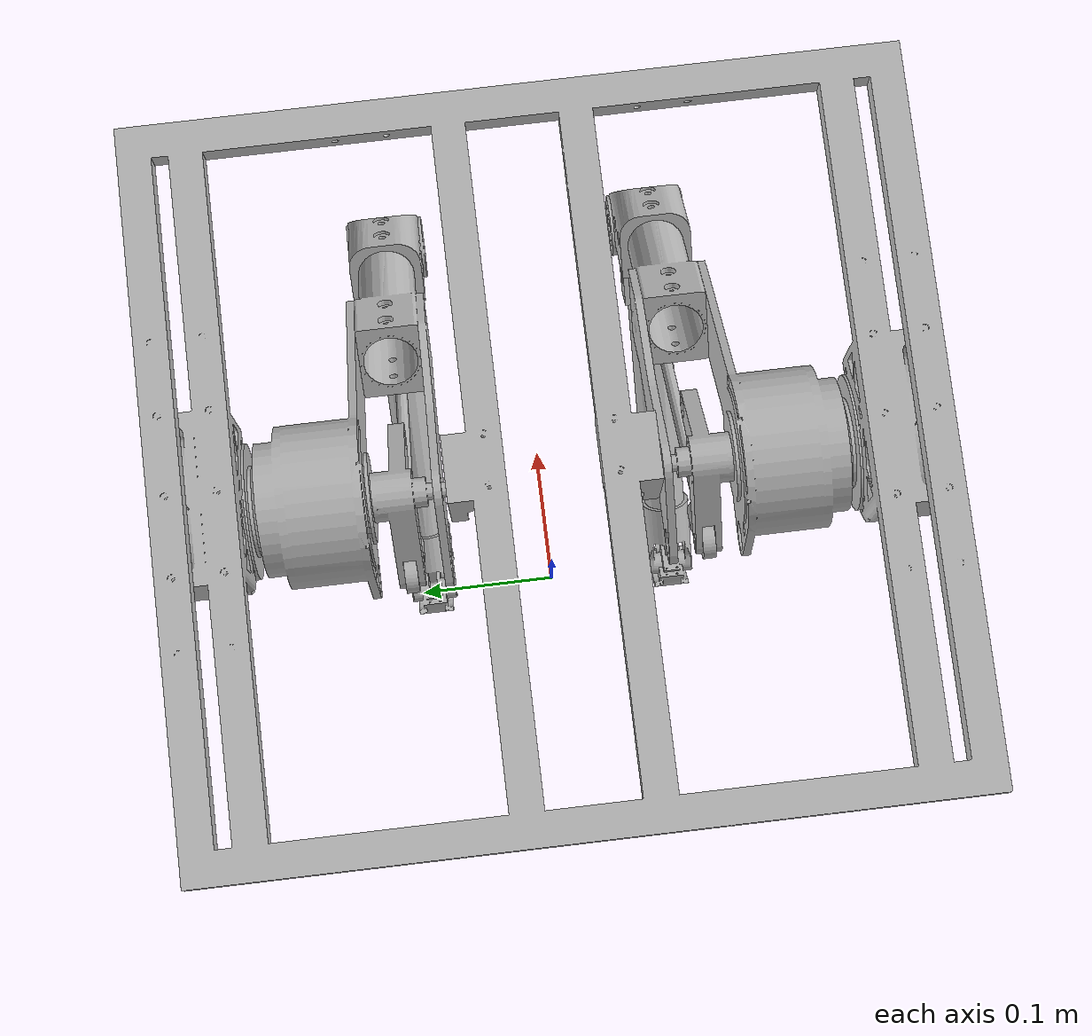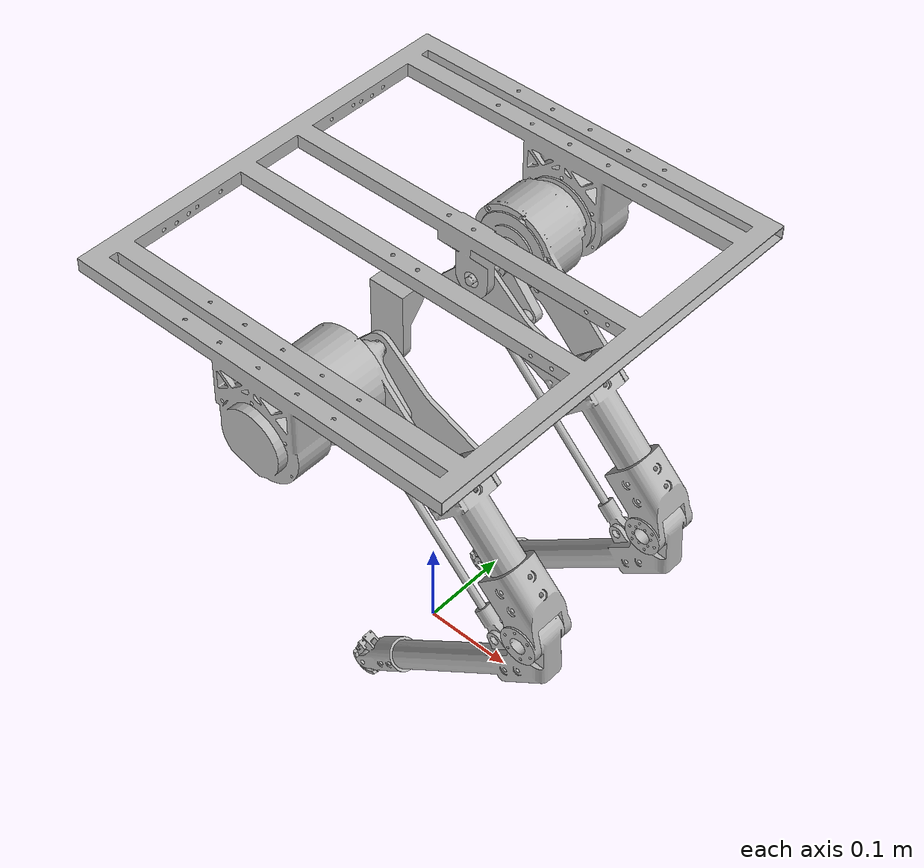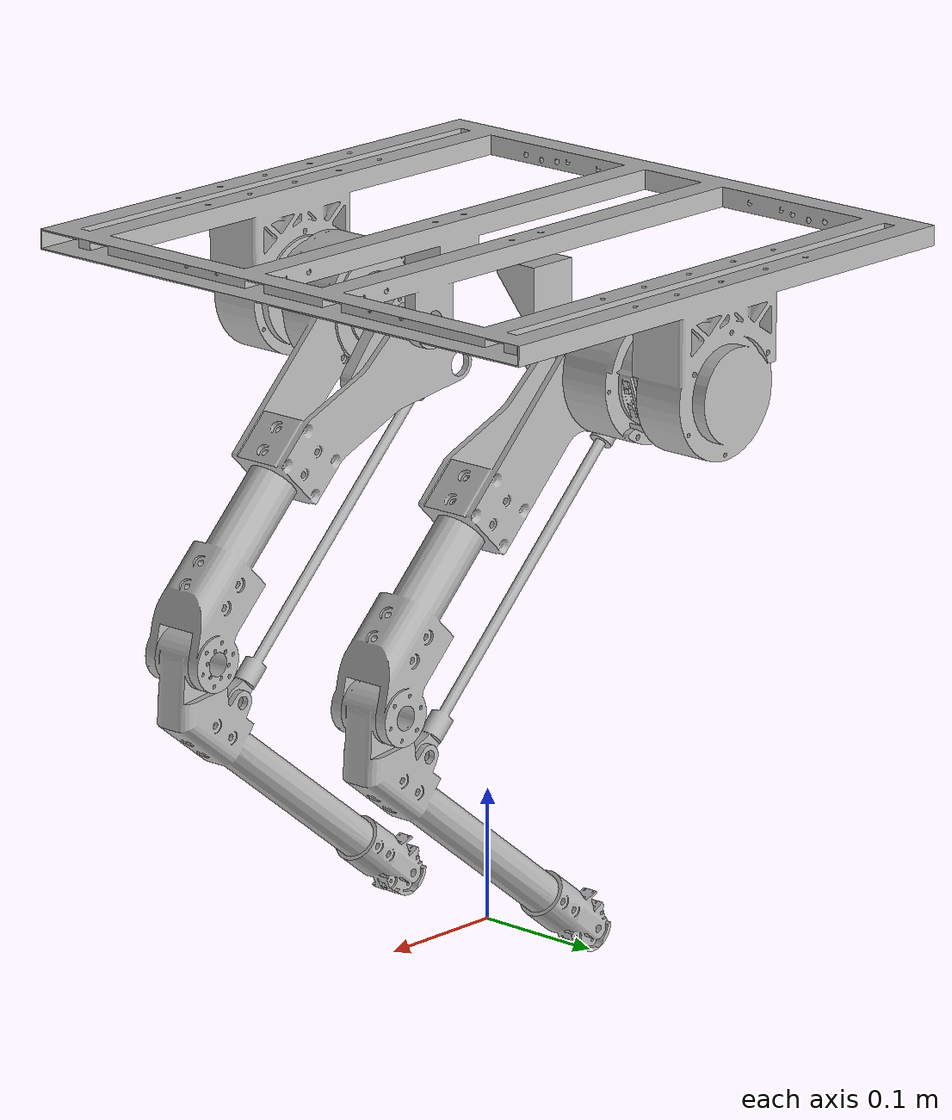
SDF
<?xml version='1.0'?>
<sdf version='1.7'>
  <model name='model_urdf'>
    <link name='base_link'>
      <inertial>
        <pose>-0.001894 0 0.476982 0 -0 0</pose>
        <mass>1.78173</mass>
        <inertia>
          <ixx>0.0157194</ixx>
          <ixy>4.03459e-10</ixy>
          <ixz>7.77942e-07</ixz>
          <iyy>0.0134756</iyy>
          <iyz>1.38093e-10</iyz>
          <izz>0.0280833</izz>
        </inertia>
      </inertial>
      <self_collide>0</self_collide>
      <enable_wind>0</enable_wind>
      <kinematic>0</kinematic>
      <pose>0 0 0 0 -0 0</pose>
      <visual name='base_link_visual'>
        <pose>0 0 0 0 -0 0</pose>
        <geometry>
          <mesh>
            <scale>1 1 1</scale>
            <uri>/home/zhe/catkin_ws/src/Hyleg/hyleg_ros/robots/model_urdf/meshes/base_link.STL</uri>
          </mesh>
        </geometry>
        <material>
          <shader type='pixel'/>
          <emissive>0 0 0 1</emissive>
        </material>
        <transparency>0</transparency>
        <cast_shadows>1</cast_shadows>
      </visual>
      <collision name='base_link_collision'>
        <laser_retro>0</laser_retro>
        <max_contacts>10</max_contacts>
        <pose>0 0 0 0 -0 0</pose>
        <geometry>
          <mesh>
            <uri>/home/zhe/catkin_ws/src/Hyleg/hyleg_ros/robots/model_urdf/meshes/base_link.STL</uri>
            <scale>1 1 1</scale>
          </mesh>
        </geometry>
        <surface>
          <friction>
            <ode>
              <mu>1</mu>
              <mu2>1</mu2>
              <fdir1>0 0 0</fdir1>
              <slip1>0</slip1>
              <slip2>0</slip2>
            </ode>
            <torsional>
              <coefficient>1</coefficient>
              <patch_radius>0</patch_radius>
              <surface_radius>0</surface_radius>
              <use_patch_radius>1</use_patch_radius>
              <ode>
                <slip>0</slip>
              </ode>
            </torsional>
          </friction>
          <bounce>
            <restitution_coefficient>0</restitution_coefficient>
            <threshold>1e+06</threshold>
          </bounce>
          <contact>
            <collide_without_contact>0</collide_without_contact>
            <collide_without_contact_bitmask>1</collide_without_contact_bitmask>
            <collide_bitmask>1</collide_bitmask>
            <ode>
              <soft_cfm>0</soft_cfm>
              <soft_erp>0.2</soft_erp>
              <kp>1e+13</kp>
              <kd>1</kd>
              <max_vel>0.01</max_vel>
              <min_depth>0</min_depth>
            </ode>
            <bullet>
              <split_impulse>1</split_impulse>
              <split_impulse_penetration_threshold>-0.01</split_impulse_penetration_threshold>
              <soft_cfm>0</soft_cfm>
              <soft_erp>0.2</soft_erp>
              <kp>1e+13</kp>
              <kd>1</kd>
            </bullet>
          </contact>
        </surface>
      </collision>
    </link>
    <link name='Left_Link1'>
      <pose>3.9e-05 -0.1776 0.442293 1.5708 0.785398 -0</pose>
      <inertial>
        <pose>0.078928 0.005282 -0.06404 0 -0 0</pose>
        <mass>0.922871</mass>
        <inertia>
          <ixx>0.000603938</ixx>
          <ixy>-0.000174003</ixy>
          <ixz>3.48802e-07</ixz>
          <iyy>0.00123111</iyy>
          <iyz>1.10518e-07</iyz>
          <izz>0.00154943</izz>
        </inertia>
      </inertial>
      <self_collide>0</self_collide>
      <enable_wind>0</enable_wind>
      <kinematic>0</kinematic>
      <visual name='Left_Link1_visual'>
        <pose>0 0 0 0 -0 0</pose>
        <geometry>
          <mesh>
            <scale>1 1 1</scale>
            <uri>/home/zhe/catkin_ws/src/Hyleg/hyleg_ros/robots/model_urdf/meshes/Left_Link1.STL</uri>
          </mesh>
        </geometry>
        <material>
          <shader type='pixel'/>
          <emissive>0 0 0 1</emissive>
        </material>
        <transparency>0</transparency>
        <cast_shadows>1</cast_shadows>
      </visual>
      <collision name='Left_Link1_collision'>
        <laser_retro>0</laser_retro>
        <max_contacts>10</max_contacts>
        <pose>0 0 0 0 -0 0</pose>
        <geometry>
          <mesh>
            <uri>/home/zhe/catkin_ws/src/Hyleg/hyleg_ros/robots/model_urdf/meshes/Left_Link1.STL</uri>
            <scale>1 1 1</scale>
          </mesh>
        </geometry>
        <surface>
          <friction>
            <ode>
              <mu>1</mu>
              <mu2>1</mu2>
              <fdir1>0 0 0</fdir1>
              <slip1>0</slip1>
              <slip2>0</slip2>
            </ode>
            <torsional>
              <coefficient>1</coefficient>
              <patch_radius>0</patch_radius>
              <surface_radius>0</surface_radius>
              <use_patch_radius>1</use_patch_radius>
              <ode>
                <slip>0</slip>
              </ode>
            </torsional>
          </friction>
          <bounce>
            <restitution_coefficient>0</restitution_coefficient>
            <threshold>1e+06</threshold>
          </bounce>
          <contact>
            <collide_without_contact>0</collide_without_contact>
            <collide_without_contact_bitmask>1</collide_without_contact_bitmask>
            <collide_bitmask>1</collide_bitmask>
            <ode>
              <soft_cfm>0</soft_cfm>
              <soft_erp>0.2</soft_erp>
              <kp>1e+13</kp>
              <kd>1</kd>
              <max_vel>0.01</max_vel>
              <min_depth>0</min_depth>
            </ode>
            <bullet>
              <split_impulse>1</split_impulse>
              <split_impulse_penetration_threshold>-0.01</split_impulse_penetration_threshold>
              <soft_cfm>0</soft_cfm>
              <soft_erp>0.2</soft_erp>
              <kp>1e+13</kp>
              <kd>1</kd>
            </bullet>
          </contact>
        </surface>
      </collision>
    </link>
    <link name='Left_Link2'>
      <pose>3.9e-05 -0.1083 0.442293 1.5708 0.785398 -0</pose>
      <inertial>
        <pose>0.007016 -0.008169 -0.011953 0 -0 0</pose>
        <mass>0.0574039</mass>
        <inertia>
          <ixx>1.85568e-05</ixx>
          <ixy>-4.31737e-06</ixy>
          <ixz>-3.24972e-07</ixz>
          <iyy>1.91029e-05</iyy>
          <iyz>3.79257e-07</iyz>
          <izz>3.05314e-05</izz>
        </inertia>
      </inertial>
      <self_collide>0</self_collide>
      <enable_wind>0</enable_wind>
      <kinematic>0</kinematic>
      <visual name='Left_Link2_visual'>
        <pose>0 0 0 0 -0 0</pose>
        <geometry>
          <mesh>
            <scale>1 1 1</scale>
            <uri>/home/zhe/catkin_ws/src/Hyleg/hyleg_ros/robots/model_urdf/meshes/Left_Link2.STL</uri>
          </mesh>
        </geometry>
        <material>
          <shader type='pixel'/>
        </material>
        <transparency>0</transparency>
        <cast_shadows>1</cast_shadows>
      </visual>
      <collision name='Left_Link2_collision'>
        <laser_retro>0</laser_retro>
        <max_contacts>10</max_contacts>
        <pose>0 0 0 0 -0 0</pose>
        <geometry>
          <mesh>
            <uri>/home/zhe/catkin_ws/src/Hyleg/hyleg_ros/robots/model_urdf/meshes/Left_Link2.STL</uri>
            <scale>1 1 1</scale>
          </mesh>
        </geometry>
        <surface>
          <friction>
            <ode>
              <mu>1</mu>
              <mu2>1</mu2>
              <fdir1>0 0 0</fdir1>
              <slip1>0</slip1>
              <slip2>0</slip2>
            </ode>
            <torsional>
              <coefficient>1</coefficient>
              <patch_radius>0</patch_radius>
              <surface_radius>0</surface_radius>
              <use_patch_radius>1</use_patch_radius>
              <ode>
                <slip>0</slip>
              </ode>
            </torsional>
          </friction>
          <bounce>
            <restitution_coefficient>0</restitution_coefficient>
            <threshold>1e+06</threshold>
          </bounce>
          <contact>
            <collide_without_contact>0</collide_without_contact>
            <collide_without_contact_bitmask>1</collide_without_contact_bitmask>
            <collide_bitmask>1</collide_bitmask>
            <ode>
              <soft_cfm>0</soft_cfm>
              <soft_erp>0.2</soft_erp>
              <kp>1e+13</kp>
              <kd>1</kd>
              <max_vel>0.01</max_vel>
              <min_depth>0</min_depth>
            </ode>
            <bullet>
              <split_impulse>1</split_impulse>
              <split_impulse_penetration_threshold>-0.01</split_impulse_penetration_threshold>
              <soft_cfm>0</soft_cfm>
              <soft_erp>0.2</soft_erp>
              <kp>1e+13</kp>
              <kd>1</kd>
            </bullet>
          </contact>
        </surface>
      </collision>
    </link>
    <link name='Left_Link3'>
      <pose>0.212171 -0.0915 0.230161 -1.5708 0.785375 3.14159</pose>
      <inertial>
        <pose>0.120291 0.015724 0 0 -0 0</pose>
        <mass>0.190635</mass>
        <inertia>
          <ixx>5.83167e-05</ixx>
          <ixy>5.21798e-05</ixy>
          <ixz>8.45318e-11</ixz>
          <iyy>0.000589702</iyy>
          <iyz>-5.33543e-11</iyz>
          <izz>0.000609708</izz>
        </inertia>
      </inertial>
      <self_collide>0</self_collide>
      <enable_wind>0</enable_wind>
      <kinematic>0</kinematic>
      <visual name='Left_Link3_visual'>
        <pose>0 0 0 0 -0 0</pose>
        <geometry>
          <mesh>
            <scale>1 1 1</scale>
            <uri>/home/zhe/catkin_ws/src/Hyleg/hyleg_ros/robots/model_urdf/meshes/Left_Link3.STL</uri>
          </mesh>
        </geometry>
        <material>
          <shader type='pixel'/>
          <emissive>0 0 0 1</emissive>
        </material>
        <transparency>0</transparency>
        <cast_shadows>1</cast_shadows>
      </visual>
      <collision name='Left_Link3_collision'>
        <laser_retro>0</laser_retro>
        <max_contacts>10</max_contacts>
        <pose>0 0 0 0 -0 0</pose>
        <geometry>
          <mesh>
            <uri>/home/zhe/catkin_ws/src/Hyleg/hyleg_ros/robots/model_urdf/meshes/Left_Link3.STL</uri>
            <scale>1 1 1</scale>
          </mesh>
        </geometry>
        <surface>
          <friction>
            <ode>
              <mu>1</mu>
              <mu2>1</mu2>
              <fdir1>0 0 0</fdir1>
              <slip1>0</slip1>
              <slip2>0</slip2>
            </ode>
            <torsional>
              <coefficient>1</coefficient>
              <patch_radius>0</patch_radius>
              <surface_radius>0</surface_radius>
              <use_patch_radius>1</use_patch_radius>
              <ode>
                <slip>0</slip>
              </ode>
            </torsional>
          </friction>
          <bounce>
            <restitution_coefficient>0</restitution_coefficient>
            <threshold>1e+06</threshold>
          </bounce>
          <contact>
            <collide_without_contact>0</collide_without_contact>
            <collide_without_contact_bitmask>1</collide_without_contact_bitmask>
            <collide_bitmask>1</collide_bitmask>
            <ode>
              <soft_cfm>0</soft_cfm>
              <soft_erp>0.2</soft_erp>
              <kp>1e+13</kp>
              <kd>1</kd>
              <max_vel>0.01</max_vel>
              <min_depth>0</min_depth>
            </ode>
            <bullet>
              <split_impulse>1</split_impulse>
              <split_impulse_penetration_threshold>-0.01</split_impulse_penetration_threshold>
              <soft_cfm>0</soft_cfm>
              <soft_erp>0.2</soft_erp>
              <kp>1e+13</kp>
              <kd>1</kd>
            </bullet>
          </contact>
        </surface>
      </collision>
    </link>
    <link name='Left_Link4'>
      <pose>-0.042387 -0.0915 0.399867 -1.57079 0.785398 0</pose>
      <inertial>
        <pose>0.15 0 -0 0 -0 0</pose>
        <mass>0.0249904</mass>
        <inertia>
          <ixx>6.19006e-07</ixx>
          <ixy>-8.4031e-19</ixy>
          <ixz>-1.00608e-19</ixz>
          <iyy>7.99002e-05</iyy>
          <iyz>1.41027e-22</iyz>
          <izz>8.00742e-05</izz>
        </inertia>
      </inertial>
      <self_collide>0</self_collide>
      <enable_wind>0</enable_wind>
      <kinematic>0</kinematic>
      <visual name='Left_Link4_visual'>
        <pose>0 0 0 0 -0 0</pose>
        <geometry>
          <mesh>
            <scale>1 1 1</scale>
            <uri>/home/zhe/catkin_ws/src/Hyleg/hyleg_ros/robots/model_urdf/meshes/Left_Link4.STL</uri>
          </mesh>
        </geometry>
        <material>
          <shader type='pixel'/>
          <emissive>0 0 0 1</emissive>
        </material>
        <transparency>0</transparency>
        <cast_shadows>1</cast_shadows>
      </visual>
      <collision name='Left_Link4_collision'>
        <laser_retro>0</laser_retro>
        <max_contacts>10</max_contacts>
        <pose>0 0 0 0 -0 0</pose>
        <geometry>
          <mesh>
            <uri>/home/zhe/catkin_ws/src/Hyleg/hyleg_ros/robots/model_urdf/meshes/Left_Link4.STL</uri>
            <scale>1 1 1</scale>
          </mesh>
        </geometry>
        <surface>
          <friction>
            <ode>
              <mu>1</mu>
              <mu2>1</mu2>
              <fdir1>0 0 0</fdir1>
              <slip1>0</slip1>
              <slip2>0</slip2>
            </ode>
            <torsional>
              <coefficient>1</coefficient>
              <patch_radius>0</patch_radius>
              <surface_radius>0</surface_radius>
              <use_patch_radius>1</use_patch_radius>
              <ode>
                <slip>0</slip>
              </ode>
            </torsional>
          </friction>
          <bounce>
            <restitution_coefficient>0</restitution_coefficient>
            <threshold>1e+06</threshold>
          </bounce>
          <contact>
            <collide_without_contact>0</collide_without_contact>
            <collide_without_contact_bitmask>1</collide_without_contact_bitmask>
            <collide_bitmask>1</collide_bitmask>
            <ode>
              <soft_cfm>0</soft_cfm>
              <soft_erp>0.2</soft_erp>
              <kp>1e+13</kp>
              <kd>1</kd>
              <max_vel>0.01</max_vel>
              <min_depth>0</min_depth>
            </ode>
            <bullet>
              <split_impulse>1</split_impulse>
              <split_impulse_penetration_threshold>-0.01</split_impulse_penetration_threshold>
              <soft_cfm>0</soft_cfm>
              <soft_erp>0.2</soft_erp>
              <kp>1e+13</kp>
              <kd>1</kd>
            </bullet>
          </contact>
        </surface>
      </collision>
    </link>
    <link name='Right_Link1'>
      <pose>3.9e-05 0.1776 0.442293 -1.5708 0.785398 0</pose>
      <inertial>
        <pose>0.078928 -0.005282 -0.06404 0 -0 0</pose>
        <mass>0.92287</mass>
        <inertia>
          <ixx>0.000603938</ixx>
          <ixy>0.000174003</ixy>
          <ixz>3.48956e-07</ixz>
          <iyy>0.00123111</iyy>
          <iyz>-1.10606e-07</iyz>
          <izz>0.00154943</izz>
        </inertia>
      </inertial>
      <self_collide>0</self_collide>
      <enable_wind>0</enable_wind>
      <kinematic>0</kinematic>
      <visual name='Right_Link1_visual'>
        <pose>0 0 0 0 -0 0</pose>
        <geometry>
          <mesh>
            <scale>1 1 1</scale>
            <uri>/home/zhe/catkin_ws/src/Hyleg/hyleg_ros/robots/model_urdf/meshes/Right_Link1.STL</uri>
          </mesh>
        </geometry>
        <material>
          <shader type='pixel'/>
          <emissive>0 0 0 1</emissive>
        </material>
        <transparency>0</transparency>
        <cast_shadows>1</cast_shadows>
      </visual>
      <collision name='Right_Link1_collision'>
        <laser_retro>0</laser_retro>
        <max_contacts>10</max_contacts>
        <pose>0 0 0 0 -0 0</pose>
        <geometry>
          <mesh>
            <uri>/home/zhe/catkin_ws/src/Hyleg/hyleg_ros/robots/model_urdf/meshes/Right_Link1.STL</uri>
            <scale>1 1 1</scale>
          </mesh>
        </geometry>
        <surface>
          <friction>
            <ode>
              <mu>1</mu>
              <mu2>1</mu2>
              <fdir1>0 0 0</fdir1>
              <slip1>0</slip1>
              <slip2>0</slip2>
            </ode>
            <torsional>
              <coefficient>1</coefficient>
              <patch_radius>0</patch_radius>
              <surface_radius>0</surface_radius>
              <use_patch_radius>1</use_patch_radius>
              <ode>
                <slip>0</slip>
              </ode>
            </torsional>
          </friction>
          <bounce>
            <restitution_coefficient>0</restitution_coefficient>
            <threshold>1e+06</threshold>
          </bounce>
          <contact>
            <collide_without_contact>0</collide_without_contact>
            <collide_without_contact_bitmask>1</collide_without_contact_bitmask>
            <collide_bitmask>1</collide_bitmask>
            <ode>
              <soft_cfm>0</soft_cfm>
              <soft_erp>0.2</soft_erp>
              <kp>1e+13</kp>
              <kd>1</kd>
              <max_vel>0.01</max_vel>
              <min_depth>0</min_depth>
            </ode>
            <bullet>
              <split_impulse>1</split_impulse>
              <split_impulse_penetration_threshold>-0.01</split_impulse_penetration_threshold>
              <soft_cfm>0</soft_cfm>
              <soft_erp>0.2</soft_erp>
              <kp>1e+13</kp>
              <kd>1</kd>
            </bullet>
          </contact>
        </surface>
      </collision>
    </link>
    <link name='Right_Link2'>
      <pose>3.9e-05 0.1083 0.442293 -1.5708 0.785398 0</pose>
      <inertial>
        <pose>0.007016 0.008169 -0.011953 0 -0 0</pose>
        <mass>0.0574039</mass>
        <inertia>
          <ixx>1.85568e-05</ixx>
          <ixy>4.31737e-06</ixy>
          <ixz>-3.24972e-07</ixz>
          <iyy>1.91029e-05</iyy>
          <iyz>-3.79257e-07</iyz>
          <izz>3.05314e-05</izz>
        </inertia>
      </inertial>
      <self_collide>0</self_collide>
      <enable_wind>0</enable_wind>
      <kinematic>0</kinematic>
      <visual name='Right_Link2_visual'>
        <pose>0 0 0 0 -0 0</pose>
        <geometry>
          <mesh>
            <scale>1 1 1</scale>
            <uri>/home/zhe/catkin_ws/src/Hyleg/hyleg_ros/robots/model_urdf/meshes/Right_Link2.STL</uri>
          </mesh>
        </geometry>
        <material>
          <shader type='pixel'/>
        </material>
        <transparency>0</transparency>
        <cast_shadows>1</cast_shadows>
      </visual>
      <collision name='Right_Link2_collision'>
        <laser_retro>0</laser_retro>
        <max_contacts>10</max_contacts>
        <pose>0 0 0 0 -0 0</pose>
        <geometry>
          <mesh>
            <uri>/home/zhe/catkin_ws/src/Hyleg/hyleg_ros/robots/model_urdf/meshes/Right_Link2.STL</uri>
            <scale>1 1 1</scale>
          </mesh>
        </geometry>
        <surface>
          <friction>
            <ode>
              <mu>1</mu>
              <mu2>1</mu2>
              <fdir1>0 0 0</fdir1>
              <slip1>0</slip1>
              <slip2>0</slip2>
            </ode>
            <torsional>
              <coefficient>1</coefficient>
              <patch_radius>0</patch_radius>
              <surface_radius>0</surface_radius>
              <use_patch_radius>1</use_patch_radius>
              <ode>
                <slip>0</slip>
              </ode>
            </torsional>
          </friction>
          <bounce>
            <restitution_coefficient>0</restitution_coefficient>
            <threshold>1e+06</threshold>
          </bounce>
          <contact>
            <collide_without_contact>0</collide_without_contact>
            <collide_without_contact_bitmask>1</collide_without_contact_bitmask>
            <collide_bitmask>1</collide_bitmask>
            <ode>
              <soft_cfm>0</soft_cfm>
              <soft_erp>0.2</soft_erp>
              <kp>1e+13</kp>
              <kd>1</kd>
              <max_vel>0.01</max_vel>
              <min_depth>0</min_depth>
            </ode>
            <bullet>
              <split_impulse>1</split_impulse>
              <split_impulse_penetration_threshold>-0.01</split_impulse_penetration_threshold>
              <soft_cfm>0</soft_cfm>
              <soft_erp>0.2</soft_erp>
              <kp>1e+13</kp>
              <kd>1</kd>
            </bullet>
          </contact>
        </surface>
      </collision>
    </link>
    <link name='Right_Link3'>
      <pose>0.212171 0.0915 0.230161 1.5708 0.785375 -3.14159</pose>
      <inertial>
        <pose>0.120291 -0.015724 0 0 -0 0</pose>
        <mass>0.190634</mass>
        <inertia>
          <ixx>5.83168e-05</ixx>
          <ixy>-5.21794e-05</ixy>
          <ixz>-2.09499e-10</ixz>
          <iyy>0.000589701</iyy>
          <iyz>-1.63109e-10</iyz>
          <izz>0.000609707</izz>
        </inertia>
      </inertial>
      <self_collide>0</self_collide>
      <enable_wind>0</enable_wind>
      <kinematic>0</kinematic>
      <visual name='Right_Link3_visual'>
        <pose>0 0 0 0 -0 0</pose>
        <geometry>
          <mesh>
            <scale>1 1 1</scale>
            <uri>/home/zhe/catkin_ws/src/Hyleg/hyleg_ros/robots/model_urdf/meshes/Right_Link3.STL</uri>
          </mesh>
        </geometry>
        <material>
          <shader type='pixel'/>
          <emissive>0 0 0 1</emissive>
        </material>
        <transparency>0</transparency>
        <cast_shadows>1</cast_shadows>
      </visual>
      <collision name='Right_Link3_collision'>
        <laser_retro>0</laser_retro>
        <max_contacts>10</max_contacts>
        <pose>0 0 0 0 -0 0</pose>
        <geometry>
          <mesh>
            <uri>/home/zhe/catkin_ws/src/Hyleg/hyleg_ros/robots/model_urdf/meshes/Right_Link3.STL</uri>
            <scale>1 1 1</scale>
          </mesh>
        </geometry>
        <surface>
          <friction>
            <ode>
              <mu>1</mu>
              <mu2>1</mu2>
              <fdir1>0 0 0</fdir1>
              <slip1>0</slip1>
              <slip2>0</slip2>
            </ode>
            <torsional>
              <coefficient>1</coefficient>
              <patch_radius>0</patch_radius>
              <surface_radius>0</surface_radius>
              <use_patch_radius>1</use_patch_radius>
              <ode>
                <slip>0</slip>
              </ode>
            </torsional>
          </friction>
          <bounce>
            <restitution_coefficient>0</restitution_coefficient>
            <threshold>1e+06</threshold>
          </bounce>
          <contact>
            <collide_without_contact>0</collide_without_contact>
            <collide_without_contact_bitmask>1</collide_without_contact_bitmask>
            <collide_bitmask>1</collide_bitmask>
            <ode>
              <soft_cfm>0</soft_cfm>
              <soft_erp>0.2</soft_erp>
              <kp>1e+13</kp>
              <kd>1</kd>
              <max_vel>0.01</max_vel>
              <min_depth>0</min_depth>
            </ode>
            <bullet>
              <split_impulse>1</split_impulse>
              <split_impulse_penetration_threshold>-0.01</split_impulse_penetration_threshold>
              <soft_cfm>0</soft_cfm>
              <soft_erp>0.2</soft_erp>
              <kp>1e+13</kp>
              <kd>1</kd>
            </bullet>
          </contact>
        </surface>
      </collision>
    </link>
    <link name='Right_Link4'>
      <pose>-0.042387 0.0915 0.399867 1.57079 0.785398 0</pose>
      <inertial>
        <pose>0.15 -0 -0 0 -0 0</pose>
        <mass>0.0249904</mass>
        <inertia>
          <ixx>6.19006e-07</ixx>
          <ixy>8.34539e-19</ixy>
          <ixz>-1.0989e-19</ixz>
          <iyy>7.99002e-05</iyy>
          <iyz>4.27168e-23</iyz>
          <izz>8.00742e-05</izz>
        </inertia>
      </inertial>
      <self_collide>0</self_collide>
      <enable_wind>0</enable_wind>
      <kinematic>0</kinematic>
      <visual name='Right_Link4_visual'>
        <pose>0 0 0 0 -0 0</pose>
        <geometry>
          <mesh>
            <scale>1 1 1</scale>
            <uri>/home/zhe/catkin_ws/src/Hyleg/hyleg_ros/robots/model_urdf/meshes/Right_Link4.STL</uri>
          </mesh>
        </geometry>
        <material>
          <shader type='pixel'/>
          <emissive>0 0 0 1</emissive>
        </material>
        <transparency>0</transparency>
        <cast_shadows>1</cast_shadows>
      </visual>
      <collision name='Right_Link4_collision'>
        <laser_retro>0</laser_retro>
        <max_contacts>10</max_contacts>
        <pose>0 0 0 0 -0 0</pose>
        <geometry>
          <mesh>
            <uri>/home/zhe/catkin_ws/src/Hyleg/hyleg_ros/robots/model_urdf/meshes/Right_Link4.STL</uri>
            <scale>1 1 1</scale>
          </mesh>
        </geometry>
        <surface>
          <friction>
            <ode>
              <mu>1</mu>
              <mu2>1</mu2>
              <fdir1>0 0 0</fdir1>
              <slip1>0</slip1>
              <slip2>0</slip2>
            </ode>
            <torsional>
              <coefficient>1</coefficient>
              <patch_radius>0</patch_radius>
              <surface_radius>0</surface_radius>
              <use_patch_radius>1</use_patch_radius>
              <ode>
                <slip>0</slip>
              </ode>
            </torsional>
          </friction>
          <bounce>
            <restitution_coefficient>0</restitution_coefficient>
            <threshold>1e+06</threshold>
          </bounce>
          <contact>
            <collide_without_contact>0</collide_without_contact>
            <collide_without_contact_bitmask>1</collide_without_contact_bitmask>
            <collide_bitmask>1</collide_bitmask>
            <ode>
              <soft_cfm>0</soft_cfm>
              <soft_erp>0.2</soft_erp>
              <kp>1e+13</kp>
              <kd>1</kd>
              <max_vel>0.01</max_vel>
              <min_depth>0</min_depth>
            </ode>
            <bullet>
              <split_impulse>1</split_impulse>
              <split_impulse_penetration_threshold>-0.01</split_impulse_penetration_threshold>
              <soft_cfm>0</soft_cfm>
              <soft_erp>0.2</soft_erp>
              <kp>1e+13</kp>
              <kd>1</kd>
            </bullet>
          </contact>
        </surface>
      </collision>
    </link>
    <joint name='joint13' type='revolute'>
      <parent>Left_Link4</parent>
      <child>Left_Link3</child>
      <pose>0.06 0 0 0 -0 0</pose>
      <axis>
        <xyz>0 0 -1</xyz>
        <limit>
          <lower>-1.79769e+308</lower>
          <upper>1.79769e+308</upper>
          <effort>-1</effort>
          <velocity>-1</velocity>
        </limit>
        <dynamics>
          <spring_reference>0</spring_reference>
          <spring_stiffness>0</spring_stiffness>
          <damping>0</damping>
          <friction>0</friction>
        </dynamics>
      </axis>
      <physics>
        <ode>
          <limit>
            <cfm>0</cfm>
            <erp>0.2</erp>
          </limit>
          <suspension>
            <cfm>0</cfm>
            <erp>0.2</erp>
          </suspension>
        </ode>
      </physics>
    </joint>
    <joint name='joint23' type='revolute'>
      <parent>Right_Link4</parent>
      <child>Right_Link3</child>
      <pose>0.06 0 0 0 -0 0</pose>
      <axis>
        <xyz>0 0 -1</xyz>
        <limit>
          <lower>-1.79769e+308</lower>
          <upper>1.79769e+308</upper>
          <effort>-1</effort>
          <velocity>-1</velocity>
        </limit>
        <dynamics>
          <spring_reference>0</spring_reference>
          <spring_stiffness>0</spring_stiffness>
          <damping>0</damping>
          <friction>0</friction>
        </dynamics>
      </axis>
      <physics>
        <ode>
          <limit>
            <cfm>0</cfm>
            <erp>0.2</erp>
          </limit>
          <suspension>
            <cfm>0</cfm>
            <erp>0.2</erp>
          </suspension>
        </ode>
      </physics>
    </joint>
    <joint name='join12' type='revolute'>
      <parent>Left_Link2</parent>
      <child>Left_Link4</child>
      <pose>-0 0 -0 0 -0 0</pose>
      <axis>
        <xyz>0 0 -1</xyz>
        <limit>
          <lower>-1e+16</lower>
          <upper>1e+16</upper>
          <effort>-1</effort>
          <velocity>-1</velocity>
        </limit>
        <dynamics>
          <spring_reference>0</spring_reference>
          <spring_stiffness>0</spring_stiffness>
          <damping>0</damping>
          <friction>0</friction>
        </dynamics>
      </axis>
      <physics>
        <ode>
          <limit>
            <cfm>0</cfm>
            <erp>0.2</erp>
          </limit>
          <suspension>
            <cfm>0</cfm>
            <erp>0.2</erp>
          </suspension>
        </ode>
      </physics>
    </joint>
    <joint name='joint11' type='revolute'>
      <parent>Left_Link1</parent>
      <child>Left_Link3</child>
      <pose>-0 0 -0 0 -0 0</pose>
      <axis>
        <xyz>0 0 -1</xyz>
        <limit>
          <lower>-1e+16</lower>
          <upper>1e+16</upper>
          <effort>-1</effort>
          <velocity>-1</velocity>
        </limit>
        <dynamics>
          <spring_reference>0</spring_reference>
          <spring_stiffness>0</spring_stiffness>
          <damping>0</damping>
          <friction>0</friction>
        </dynamics>
      </axis>
      <physics>
        <ode>
          <limit>
            <cfm>0</cfm>
            <erp>0.2</erp>
          </limit>
          <suspension>
            <cfm>0</cfm>
            <erp>0.2</erp>
          </suspension>
        </ode>
      </physics>
    </joint>
    <joint name='joint1' type='revolute'>
      <parent>base_link</parent>
      <child>Left_Link1</child>
      <pose>-0 0 -0 0 -0 0</pose>
      <axis>
        <xyz>0 0 -1</xyz>
        <limit>
          <lower>-1e+16</lower>
          <upper>1e+16</upper>
          <effort>-1</effort>
          <velocity>-1</velocity>
        </limit>
        <dynamics>
          <spring_reference>0</spring_reference>
          <spring_stiffness>0</spring_stiffness>
          <damping>0</damping>
          <friction>0</friction>
        </dynamics>
      </axis>
      <physics>
        <ode>
          <limit>
            <cfm>0</cfm>
            <erp>0.2</erp>
          </limit>
          <suspension>
            <cfm>0</cfm>
            <erp>0.2</erp>
          </suspension>
        </ode>
      </physics>
    </joint>
    <joint name='joint21' type='revolute'>
      <parent>Right_Link1</parent>
      <child>Right_Link3</child>
      <pose>-0 -0 -0 -0 -0 -0</pose>
      <axis>
        <xyz>0 0 -1</xyz>
        <limit>
          <lower>-1e+16</lower>
          <upper>1e+16</upper>
          <effort>-1</effort>
          <velocity>-1</velocity>
        </limit>
        <dynamics>
          <spring_reference>0</spring_reference>
          <spring_stiffness>0</spring_stiffness>
          <damping>0</damping>
          <friction>0</friction>
        </dynamics>
      </axis>
      <physics>
        <ode>
          <limit>
            <cfm>0</cfm>
            <erp>0.2</erp>
          </limit>
          <suspension>
            <cfm>0</cfm>
            <erp>0.2</erp>
          </suspension>
        </ode>
      </physics>
    </joint>
    <joint name='joint22' type='revolute'>
      <parent>Right_Link2</parent>
      <child>Right_Link4</child>
      <pose>-0 0 -0 0 -0 0</pose>
      <axis>
        <xyz>0 0 -1</xyz>
        <limit>
          <lower>-1e+16</lower>
          <upper>1e+16</upper>
          <effort>-1</effort>
          <velocity>-1</velocity>
        </limit>
        <dynamics>
          <spring_reference>0</spring_reference>
          <spring_stiffness>0</spring_stiffness>
          <damping>0</damping>
          <friction>0</friction>
        </dynamics>
      </axis>
      <physics>
        <ode>
          <limit>
            <cfm>0</cfm>
            <erp>0.2</erp>
          </limit>
          <suspension>
            <cfm>0</cfm>
            <erp>0.2</erp>
          </suspension>
        </ode>
      </physics>
    </joint>
    <joint name='joint2' type='revolute'>
      <parent>Left_Link1</parent>
      <child>Left_Link2</child>
      <pose>-0 0 -0 0 -0 0</pose>
      <axis>
        <xyz>0 0 -1</xyz>
        <limit>
          <lower>-1e+16</lower>
          <upper>1e+16</upper>
          <effort>-1</effort>
          <velocity>-1</velocity>
        </limit>
        <dynamics>
          <spring_reference>0</spring_reference>
          <spring_stiffness>0</spring_stiffness>
          <damping>0</damping>
          <friction>0</friction>
        </dynamics>
      </axis>
      <physics>
        <ode>
          <limit>
            <cfm>0</cfm>
            <erp>0.2</erp>
          </limit>
          <suspension>
            <cfm>0</cfm>
            <erp>0.2</erp>
          </suspension>
        </ode>
      </physics>
    </joint>
    <joint name='joint3' type='revolute'>
      <parent>base_link</parent>
      <child>Right_Link1</child>
      <pose>-0 -0 -0 0 -0 0</pose>
      <axis>
        <xyz>0 0 -1</xyz>
        <limit>
          <lower>-1e+16</lower>
          <upper>1e+16</upper>
          <effort>-1</effort>
          <velocity>-1</velocity>
        </limit>
        <dynamics>
          <spring_reference>0</spring_reference>
          <spring_stiffness>0</spring_stiffness>
          <damping>0</damping>
          <friction>0</friction>
        </dynamics>
      </axis>
      <physics>
        <ode>
          <limit>
            <cfm>0</cfm>
            <erp>0.2</erp>
          </limit>
          <suspension>
            <cfm>0</cfm>
            <erp>0.2</erp>
          </suspension>
        </ode>
      </physics>
    </joint>
    <joint name='joint4' type='revolute'>
      <parent>Right_Link1</parent>
      <child>Right_Link2</child>
      <pose>-0 -0 -0 0 -0 0</pose>
      <axis>
        <xyz>0 0 -1</xyz>
        <limit>
          <lower>-1e+16</lower>
          <upper>1e+16</upper>
          <effort>-1</effort>
          <velocity>-1</velocity>
        </limit>
        <dynamics>
          <spring_reference>0</spring_reference>
          <spring_stiffness>0</spring_stiffness>
          <damping>0</damping>
          <friction>0</friction>
        </dynamics>
      </axis>
      <physics>
        <ode>
          <limit>
            <cfm>0</cfm>
            <erp>0.2</erp>
          </limit>
          <suspension>
            <cfm>0</cfm>
            <erp>0.2</erp>
          </suspension>
        </ode>
      </physics>
    </joint>
    <static>0</static>
    <allow_auto_disable>1</allow_auto_disable>
  </model>
</sdf>
